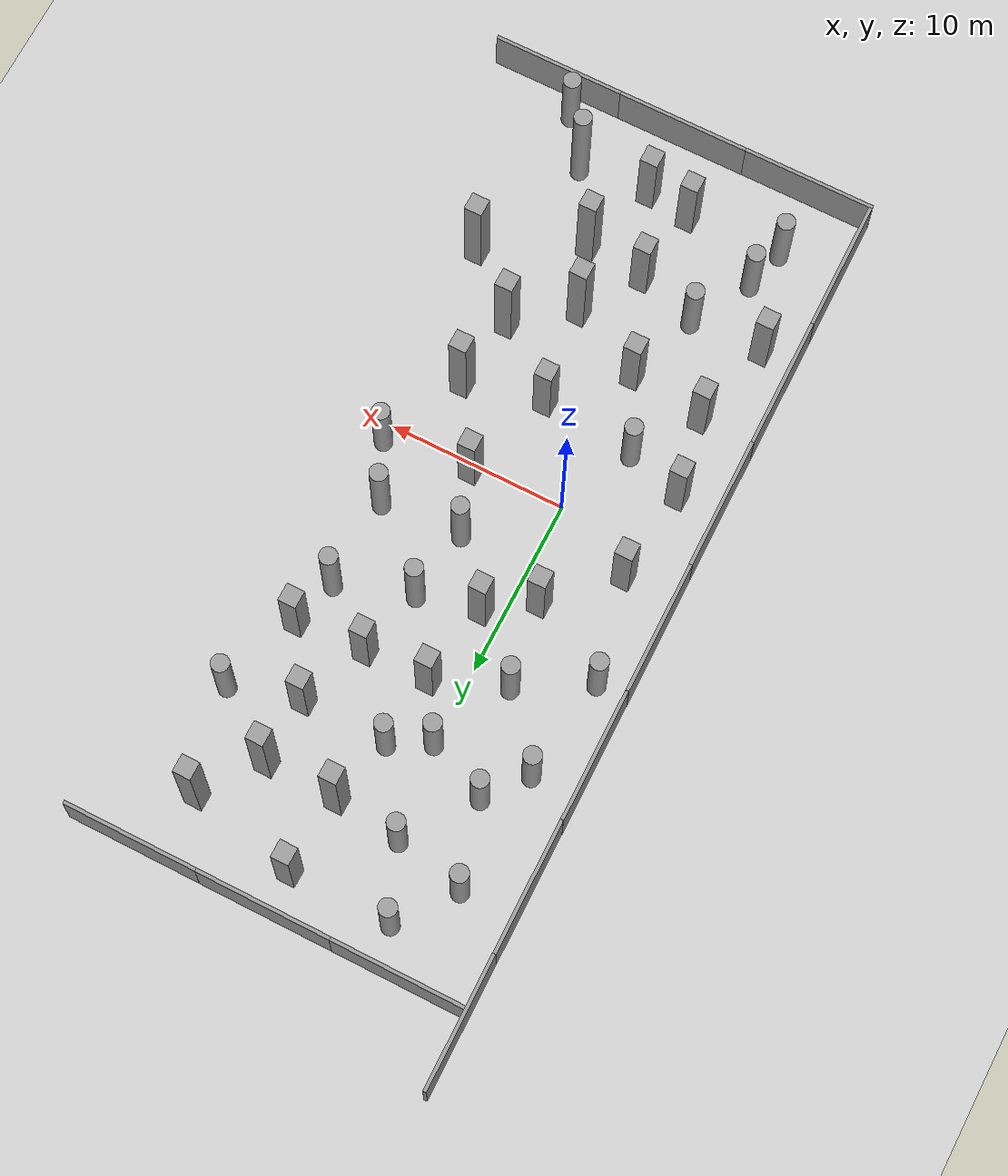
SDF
<sdf version="1.7">
 <world name="default">
  <model name="ground_plane">
   <static>1</static>
   <link name="link">
    <collision name="collision">
     <geometry><plane><normal>0 0 1</normal><size>400 400</size></plane></geometry>
     <surface><friction><ode><mu>100</mu><mu2>50</mu2></ode></friction></surface>
    </collision>
    <visual name="visual">
     <cast_shadows>0</cast_shadows>
     <geometry><plane><normal>0 0 1</normal><size>100 100</size></plane></geometry>
     <material>
      <script><uri>file://media/materials/scripts/gazebo.material</uri><name>Gazebo/Grey</name></script>
     </material>
    </visual>
   </link>
  </model>
  <model name="unit_box_0">
   <pose>1.08465 7.15435 2.66138 2e-06 -0 -0.007188</pose>
   <link name="link">
    <inertial>
     <mass>1</mass>
     <inertia>
      <ixx>0.166667</ixx>
      <ixy>0</ixy>
      <ixz>0</ixz>
      <iyy>0.166667</iyy>
      <iyz>0</iyz>
      <izz>0.166667</izz>
     </inertia>
    </inertial>
    <collision name="collision"><geometry><box><size>1 1 5.32276</size></box></geometry></collision>
    <visual name="visual">
     <geometry><box><size>1 1 5.32276</size></box></geometry>
     <material>
      <script><name>Gazebo/Grey</name><uri>file://media/materials/scripts/gazebo.material</uri></script>
     </material>
    </visual>
   </link>
  </model>
  <model name="unit_cylinder_11">
   <pose>8.59291 9.34423 2.5135 2e-06 0 -0.000619</pose>
   <link name="link">
    <inertial>
     <mass>1</mass>
     <inertia><ixx>0.145833</ixx><ixy>0</ixy><ixz>0</ixz><iyy>0.145833</iyy><iyz>0</iyz><izz>0.125</izz></inertia>
    </inertial>
    <collision name="collision">
     <geometry><cylinder><radius>0.5</radius><length>5.02706</length></cylinder></geometry>
    </collision>
    <visual name="visual">
     <geometry><cylinder><radius>0.5</radius><length>5.02706</length></cylinder></geometry>
     <material>
      <script><name>Gazebo/Grey</name><uri>file://media/materials/scripts/gazebo.material</uri></script>
     </material>
    </visual>
   </link>
  </model>
  <model name="unit_box_1_clone">
   <pose>1.75297 11.7119 2.48504 2e-06 -0 -0.005082</pose>
   <link name="link">
    <inertial>
     <mass>1</mass>
     <inertia>
      <ixx>0.166667</ixx>
      <ixy>0</ixy>
      <ixz>0</ixz>
      <iyy>0.166667</iyy>
      <iyz>0</iyz>
      <izz>0.166667</izz>
     </inertia>
    </inertial>
    <collision name="collision"><geometry><box><size>1 1 4.97009</size></box></geometry></collision>
    <visual name="visual">
     <geometry><box><size>1 1 4.97009</size></box></geometry>
     <material>
      <script><name>Gazebo/Grey</name><uri>file://media/materials/scripts/gazebo.material</uri></script>
     </material>
    </visual>
   </link>
  </model>
  <model name="unit_box_1_clone_0">
   <pose>5.37838 11.8011 2.48504 2e-06 -0 -0.002102</pose>
   <link name="link">
    <inertial>
     <mass>1</mass>
     <inertia>
      <ixx>0.166667</ixx>
      <ixy>0</ixy>
      <ixz>0</ixz>
      <iyy>0.166667</iyy>
      <iyz>0</iyz>
      <izz>0.166667</izz>
     </inertia>
    </inertial>
    <collision name="collision"><geometry><box><size>1 1 4.97009</size></box></geometry></collision>
    <visual name="visual">
     <geometry><box><size>1 1 4.97009</size></box></geometry>
     <material>
      <script><name>Gazebo/Grey</name><uri>file://media/materials/scripts/gazebo.material</uri></script>
     </material>
    </visual>
   </link>
  </model>
  <model name="unit_box_1_clone_1">
   <pose>9.26271 12.0297 2.48504 -0 2e-06 -0.00345</pose>
   <link name="link">
    <inertial>
     <mass>1</mass>
     <inertia>
      <ixx>0.166667</ixx>
      <ixy>0</ixy>
      <ixz>0</ixz>
      <iyy>0.166667</iyy>
      <iyz>0</iyz>
      <izz>0.166667</izz>
     </inertia>
    </inertial>
    <collision name="collision"><geometry><box><size>1 1 4.97009</size></box></geometry></collision>
    <visual name="visual">
     <geometry><box><size>1 1 4.97009</size></box></geometry>
     <material>
      <script><name>Gazebo/Grey</name><uri>file://media/materials/scripts/gazebo.material</uri></script>
     </material>
    </visual>
   </link>
  </model>
  <model name="unit_box_1_clone_9">
   <pose>6.92117 15.5806 2.48504 2e-06 -0 0.001536</pose>
   <link name="link">
    <inertial>
     <mass>1</mass>
     <inertia>
      <ixx>0.166667</ixx>
      <ixy>0</ixy>
      <ixz>0</ixz>
      <iyy>0.166667</iyy>
      <iyz>0</iyz>
      <izz>0.166667</izz>
     </inertia>
    </inertial>
    <collision name="collision"><geometry><box><size>1 1 4.97009</size></box></geometry></collision>
    <visual name="visual">
     <geometry><box><size>1 1 4.97009</size></box></geometry>
     <material>
      <script><name>Gazebo/Grey</name><uri>file://media/materials/scripts/gazebo.material</uri></script>
     </material>
    </visual>
   </link>
  </model>
  <model name="unit_cylinder_27_clone_0">
   <pose>10.8319 16.6345 2.257 2e-06 -0 -0.00071</pose>
   <link name="link">
    <inertial>
     <mass>1</mass>
     <inertia><ixx>0.145833</ixx><ixy>0</ixy><ixz>0</ixz><iyy>0.145833</iyy><iyz>0</iyz><izz>0.125</izz></inertia>
    </inertial>
    <collision name="collision">
     <geometry><cylinder><radius>0.5</radius><length>4.51407</length></cylinder></geometry>
    </collision>
    <visual name="visual">
     <geometry><cylinder><radius>0.5</radius><length>4.51407</length></cylinder></geometry>
     <material>
      <script><name>Gazebo/Grey</name><uri>file://media/materials/scripts/gazebo.material</uri></script>
     </material>
    </visual>
   </link>
  </model>
  <model name="unit_cylinder_27_clone_4">
   <pose>2.15827 15.6508 2.257 2e-06 -0 -0.000742</pose>
   <link name="link">
    <inertial>
     <mass>1</mass>
     <inertia><ixx>0.145833</ixx><ixy>0</ixy><ixz>0</ixz><iyy>0.145833</iyy><iyz>0</iyz><izz>0.125</izz></inertia>
    </inertial>
    <collision name="collision">
     <geometry><cylinder><radius>0.5</radius><length>4.51407</length></cylinder></geometry>
    </collision>
    <visual name="visual">
     <geometry><cylinder><radius>0.5</radius><length>4.51407</length></cylinder></geometry>
     <material>
      <script><name>Gazebo/Grey</name><uri>file://media/materials/scripts/gazebo.material</uri></script>
     </material>
    </visual>
   </link>
  </model>
  <model name="unit_box_8_clone_11">
   <pose>7.04757 19.3025 3.10477 0 1e-06 -0.00742</pose>
   <link name="link">
    <inertial>
     <mass>1</mass>
     <inertia>
      <ixx>0.166667</ixx>
      <ixy>0</ixy>
      <ixz>0</ixz>
      <iyy>0.166667</iyy>
      <iyz>0</iyz>
      <izz>0.166667</izz>
     </inertia>
    </inertial>
    <collision name="collision"><geometry><box><size>1 1 6.20954</size></box></geometry></collision>
    <visual name="visual">
     <geometry><box><size>1 1 6.20954</size></box></geometry>
     <material>
      <script><name>Gazebo/Grey</name><uri>file://media/materials/scripts/gazebo.material</uri></script>
     </material>
    </visual>
   </link>
  </model>
  <model name="unit_box_8_clone_12">
   <pose>2.9683 19.3773 3.10477 1e-06 0 -0.009439</pose>
   <link name="link">
    <inertial>
     <mass>1</mass>
     <inertia>
      <ixx>0.166667</ixx>
      <ixy>0</ixy>
      <ixz>0</ixz>
      <iyy>0.166667</iyy>
      <iyz>0</iyz>
      <izz>0.166667</izz>
     </inertia>
    </inertial>
    <collision name="collision"><geometry><box><size>1 1 6.20954</size></box></geometry></collision>
    <visual name="visual">
     <geometry><box><size>1 1 6.20954</size></box></geometry>
     <material>
      <script><name>Gazebo/Grey</name><uri>file://media/materials/scripts/gazebo.material</uri></script>
     </material>
    </visual>
   </link>
  </model>
  <model name="unit_box_8_clone_13">
   <pose>9.37041 22.3926 3.10477 -1e-06 -0 -0.009041</pose>
   <link name="link">
    <inertial>
     <mass>1</mass>
     <inertia>
      <ixx>0.166667</ixx>
      <ixy>0</ixy>
      <ixz>0</ixz>
      <iyy>0.166667</iyy>
      <iyz>0</iyz>
      <izz>0.166667</izz>
     </inertia>
    </inertial>
    <collision name="collision"><geometry><box><size>1 1 6.20954</size></box></geometry></collision>
    <visual name="visual">
     <geometry><box><size>1 1 6.20954</size></box></geometry>
     <material>
      <script><name>Gazebo/Grey</name><uri>file://media/materials/scripts/gazebo.material</uri></script>
     </material>
    </visual>
   </link>
  </model>
  <model name="unit_box_8_clone_14">
   <pose>5.41114 -13.8377 3.10477 -2e-06 5e-06 -0.007905</pose>
   <link name="link">
    <inertial>
     <mass>1</mass>
     <inertia>
      <ixx>0.166667</ixx>
      <ixy>0</ixy>
      <ixz>0</ixz>
      <iyy>0.166667</iyy>
      <iyz>0</iyz>
      <izz>0.166667</izz>
     </inertia>
    </inertial>
    <collision name="collision"><geometry><box><size>1 1 6.20954</size></box></geometry></collision>
    <visual name="visual">
     <geometry><box><size>1 1 6.20954</size></box></geometry>
     <material>
      <script><name>Gazebo/Grey</name><uri>file://media/materials/scripts/gazebo.material</uri></script>
     </material>
    </visual>
   </link>
  </model>
  <model name="unit_cylinder_17_clone">
   <pose>7.91046 -17.8277 3.23034 3e-06 -1e-06 0.007131</pose>
   <link name="link">
    <inertial>
     <mass>1</mass>
     <inertia><ixx>0.145833</ixx><ixy>0</ixy><ixz>0</ixz><iyy>0.145833</iyy><iyz>0</iyz><izz>0.125</izz></inertia>
    </inertial>
    <collision name="collision">
     <geometry><cylinder><radius>0.5</radius><length>6.46075</length></cylinder></geometry>
    </collision>
    <visual name="visual">
     <geometry><cylinder><radius>0.5</radius><length>6.46075</length></cylinder></geometry>
     <material>
      <script><name>Gazebo/Grey</name><uri>file://media/materials/scripts/gazebo.material</uri></script>
     </material>
    </visual>
   </link>
  </model>
  <model name="unit_box_1_clone_3_clone_2">
   <pose>3.3198 23.7269 2.48504 2e-06 0 -0.004656</pose>
   <link name="link">
    <inertial>
     <mass>1</mass>
     <inertia>
      <ixx>0.166667</ixx>
      <ixy>0</ixy>
      <ixz>0</ixz>
      <iyy>0.166667</iyy>
      <iyz>0</iyz>
      <izz>0.166667</izz>
     </inertia>
    </inertial>
    <collision name="collision"><geometry><box><size>1 1 4.97009</size></box></geometry></collision>
    <visual name="visual">
     <geometry><box><size>1 1 4.97009</size></box></geometry>
     <material>
      <script><name>Gazebo/Grey</name><uri>file://media/materials/scripts/gazebo.material</uri></script>
     </material>
    </visual>
   </link>
  </model>
  <model name="unit_box_1_clone_3_clone_3">
   <pose>2.01116 -13.4762 2.48504 -0 -2e-06 0.000723</pose>
   <link name="link">
    <inertial>
     <mass>1</mass>
     <inertia>
      <ixx>0.166667</ixx>
      <ixy>0</ixy>
      <ixz>0</ixz>
      <iyy>0.166667</iyy>
      <iyz>0</iyz>
      <izz>0.166667</izz>
     </inertia>
    </inertial>
    <collision name="collision"><geometry><box><size>1 1 4.97009</size></box></geometry></collision>
    <visual name="visual">
     <geometry><box><size>1 1 4.97009</size></box></geometry>
     <material>
      <script><name>Gazebo/Grey</name><uri>file://media/materials/scripts/gazebo.material</uri></script>
     </material>
    </visual>
   </link>
  </model>
  <model name="unit_box_1_clone_3_clone_4">
   <pose>3.91858 -18.18 2.48504 2e-06 -0 -0.002709</pose>
   <link name="link">
    <inertial>
     <mass>1</mass>
     <inertia>
      <ixx>0.166667</ixx>
      <ixy>0</ixy>
      <ixz>0</ixz>
      <iyy>0.166667</iyy>
      <iyz>0</iyz>
      <izz>0.166667</izz>
     </inertia>
    </inertial>
    <collision name="collision"><geometry><box><size>1 1 4.97009</size></box></geometry></collision>
    <visual name="visual">
     <geometry><box><size>1 1 4.97009</size></box></geometry>
     <material>
      <script><name>Gazebo/Grey</name><uri>file://media/materials/scripts/gazebo.material</uri></script>
     </material>
    </visual>
   </link>
  </model>
  <model name="unit_box_1_clone_3_clone_5">
   <pose>1.37657 -17.8152 2.48504 2e-06 -0 -0.00227</pose>
   <link name="link">
    <inertial>
     <mass>1</mass>
     <inertia>
      <ixx>0.166667</ixx>
      <ixy>0</ixy>
      <ixz>0</ixz>
      <iyy>0.166667</iyy>
      <iyz>0</iyz>
      <izz>0.166667</izz>
     </inertia>
    </inertial>
    <collision name="collision"><geometry><box><size>1 1 4.97009</size></box></geometry></collision>
    <visual name="visual">
     <geometry><box><size>1 1 4.97009</size></box></geometry>
     <material>
      <script><name>Gazebo/Grey</name><uri>file://media/materials/scripts/gazebo.material</uri></script>
     </material>
    </visual>
   </link>
  </model>
  <model name="grey_wall">
   <static>1</static>
   <link name="link">
    <pose>0 0 1.4 0 -0 0</pose>
    <collision name="collision"><geometry><box><size>7.5 0.2 2.8</size></box></geometry></collision>
    <visual name="visual">
     <cast_shadows>0</cast_shadows>
     <geometry><box><size>7.5 0.2 2.8</size></box></geometry>
     <material>
      <script>
       <uri>model://grey_wall/materials/scripts</uri>
       <uri>model://grey_wall/materials/textures</uri>
       <name>vrc/grey_wall</name>
      </script>
     </material>
    </visual>
   </link>
   <pose>3.76067 -21.8516 0 0 -0 0</pose>
  </model>
  <model name="grey_wall_clone">
   <static>1</static>
   <link name="link">
    <pose>0 0 1.4 0 -0 0</pose>
    <collision name="collision"><geometry><box><size>7.5 0.2 2.8</size></box></geometry></collision>
    <visual name="visual">
     <cast_shadows>0</cast_shadows>
     <geometry><box><size>7.5 0.2 2.8</size></box></geometry>
     <material>
      <script>
       <uri>model://grey_wall/materials/scripts</uri>
       <uri>model://grey_wall/materials/textures</uri>
       <name>vrc/grey_wall</name>
      </script>
     </material>
    </visual>
   </link>
   <pose>11.2467 -21.853 0 0 -0 0</pose>
  </model>
  <model name="grey_wall_clone_5">
   <static>1</static>
   <link name="link">
    <pose>0 0 1.4 0 -0 0</pose>
    <collision name="collision"><geometry><box><size>7.5 0.2 2.8</size></box></geometry></collision>
    <visual name="visual">
     <cast_shadows>0</cast_shadows>
     <geometry><box><size>7.5 0.2 2.8</size></box></geometry>
     <material>
      <script>
       <uri>model://grey_wall/materials/scripts</uri>
       <uri>model://grey_wall/materials/textures</uri>
       <name>vrc/grey_wall</name>
      </script>
     </material>
    </visual>
   </link>
   <pose>-3.71528 -21.8555 0 0 -0 0</pose>
  </model>
  <model name="grey_wall_clone_6_clone_4">
   <static>1</static>
   <link name="link">
    <pose>0 0 1.4 0 -0 0</pose>
    <collision name="collision"><geometry><box><size>7.5 0.2 2.8</size></box></geometry></collision>
    <visual name="visual">
     <cast_shadows>0</cast_shadows>
     <geometry><box><size>7.5 0.2 2.8</size></box></geometry>
     <material>
      <script>
       <uri>model://grey_wall/materials/scripts</uri>
       <uri>model://grey_wall/materials/textures</uri>
       <name>vrc/grey_wall</name>
      </script>
     </material>
    </visual>
   </link>
   <pose>-7.41183 -18.0244 0 0 0 -1.56033</pose>
  </model>
  <model name="grey_wall_clone_6_clone_5">
   <static>1</static>
   <link name="link">
    <pose>0 0 1.4 0 -0 0</pose>
    <collision name="collision"><geometry><box><size>7.5 0.2 2.8</size></box></geometry></collision>
    <visual name="visual">
     <cast_shadows>0</cast_shadows>
     <geometry><box><size>7.5 0.2 2.8</size></box></geometry>
     <material>
      <script>
       <uri>model://grey_wall/materials/scripts</uri>
       <uri>model://grey_wall/materials/textures</uri>
       <name>vrc/grey_wall</name>
      </script>
     </material>
    </visual>
   </link>
   <pose>-7.49266 -10.5633 0 0 0 -1.56033</pose>
  </model>
  <model name="grey_wall_clone_6_clone_6">
   <static>1</static>
   <link name="link">
    <pose>0 0 1.4 0 -0 0</pose>
    <collision name="collision"><geometry><box><size>7.5 0.2 2.8</size></box></geometry></collision>
    <visual name="visual">
     <cast_shadows>0</cast_shadows>
     <geometry><box><size>7.5 0.2 2.8</size></box></geometry>
     <material>
      <script>
       <uri>model://grey_wall/materials/scripts</uri>
       <uri>model://grey_wall/materials/textures</uri>
       <name>vrc/grey_wall</name>
      </script>
     </material>
    </visual>
   </link>
   <pose>-7.56139 -3.06918 0 0 0 -1.56033</pose>
  </model>
  <model name="grey_wall_clone_6_clone_7">
   <static>1</static>
   <link name="link">
    <pose>0 0 1.4 0 -0 0</pose>
    <collision name="collision"><geometry><box><size>7.5 0.2 2.8</size></box></geometry></collision>
    <visual name="visual">
     <cast_shadows>0</cast_shadows>
     <geometry><box><size>7.5 0.2 2.8</size></box></geometry>
     <material>
      <script>
       <uri>model://grey_wall/materials/scripts</uri>
       <uri>model://grey_wall/materials/textures</uri>
       <name>vrc/grey_wall</name>
      </script>
     </material>
    </visual>
   </link>
   <pose>-7.65133 4.42407 0 0 0 -1.56033</pose>
  </model>
  <model name="grey_wall_clone_6_clone_8">
   <static>1</static>
   <link name="link">
    <pose>0 0 1.4 0 -0 0</pose>
    <collision name="collision"><geometry><box><size>7.5 0.2 2.8</size></box></geometry></collision>
    <visual name="visual">
     <cast_shadows>0</cast_shadows>
     <geometry><box><size>7.5 0.2 2.8</size></box></geometry>
     <material>
      <script>
       <uri>model://grey_wall/materials/scripts</uri>
       <uri>model://grey_wall/materials/textures</uri>
       <name>vrc/grey_wall</name>
      </script>
     </material>
    </visual>
   </link>
   <pose>-7.72782 11.9321 0 0 0 -1.56033</pose>
  </model>
  <model name="grey_wall_clone_6_clone_9">
   <static>1</static>
   <link name="link">
    <pose>0 0 1.4 0 -0 0</pose>
    <collision name="collision"><geometry><box><size>7.5 0.2 2.8</size></box></geometry></collision>
    <visual name="visual">
     <cast_shadows>0</cast_shadows>
     <geometry><box><size>7.5 0.2 2.8</size></box></geometry>
     <material>
      <script>
       <uri>model://grey_wall/materials/scripts</uri>
       <uri>model://grey_wall/materials/textures</uri>
       <name>vrc/grey_wall</name>
      </script>
     </material>
    </visual>
   </link>
   <pose>-7.7962 19.3438 0 0 0 -1.56033</pose>
  </model>
  <model name="grey_wall_clone_6_clone_10">
   <static>1</static>
   <link name="link">
    <pose>0 0 1.4 0 -0 0</pose>
    <collision name="collision"><geometry><box><size>7.5 0.2 2.8</size></box></geometry></collision>
    <visual name="visual">
     <cast_shadows>0</cast_shadows>
     <geometry><box><size>7.5 0.2 2.8</size></box></geometry>
     <material>
      <script>
       <uri>model://grey_wall/materials/scripts</uri>
       <uri>model://grey_wall/materials/textures</uri>
       <name>vrc/grey_wall</name>
      </script>
     </material>
    </visual>
   </link>
   <pose>-7.86503 26.8425 0 0 0 -1.56033</pose>
  </model>
  <model name="grey_wall_clone_5_clone">
   <static>1</static>
   <link name="link">
    <pose>0 0 1.4 0 -0 0</pose>
    <collision name="collision"><geometry><box><size>7.5 0.2 2.8</size></box></geometry></collision>
    <visual name="visual">
     <cast_shadows>0</cast_shadows>
     <geometry><box><size>7.5 0.2 2.8</size></box></geometry>
     <material>
      <script>
       <uri>model://grey_wall/materials/scripts</uri>
       <uri>model://grey_wall/materials/textures</uri>
       <name>vrc/grey_wall</name>
      </script>
     </material>
    </visual>
   </link>
   <pose>-4.09194 26.0974 0 0 -0 0</pose>
  </model>
  <model name="grey_wall_clone_5_clone_0">
   <static>1</static>
   <link name="link">
    <pose>0 0 1.4 0 -0 0</pose>
    <collision name="collision"><geometry><box><size>7.5 0.2 2.8</size></box></geometry></collision>
    <visual name="visual">
     <cast_shadows>0</cast_shadows>
     <geometry><box><size>7.5 0.2 2.8</size></box></geometry>
     <material>
      <script>
       <uri>model://grey_wall/materials/scripts</uri>
       <uri>model://grey_wall/materials/textures</uri>
       <name>vrc/grey_wall</name>
      </script>
     </material>
    </visual>
   </link>
   <pose>3.39929 26.0957 0 0 -0 0</pose>
  </model>
  <model name="grey_wall_clone_5_clone_1">
   <static>1</static>
   <link name="link">
    <pose>0 0 1.4 0 -0 0</pose>
    <collision name="collision"><geometry><box><size>7.5 0.2 2.8</size></box></geometry></collision>
    <visual name="visual">
     <cast_shadows>0</cast_shadows>
     <geometry><box><size>7.5 0.2 2.8</size></box></geometry>
     <material>
      <script>
       <uri>model://grey_wall/materials/scripts</uri>
       <uri>model://grey_wall/materials/textures</uri>
       <name>vrc/grey_wall</name>
      </script>
     </material>
    </visual>
   </link>
   <pose>10.8916 26.0904 0 0 -0 0</pose>
  </model>
  <model name="unit_cylinder_27_clone_7_clone_13">
   <pose>9.81097 -20.5013 2.257 2e-06 0 -0.000747</pose>
   <link name="link">
    <inertial>
     <mass>1</mass>
     <inertia><ixx>0.145833</ixx><ixy>0</ixy><ixz>0</ixz><iyy>0.145833</iyy><iyz>0</iyz><izz>0.125</izz></inertia>
    </inertial>
    <collision name="collision">
     <geometry><cylinder><radius>0.5</radius><length>4.51407</length></cylinder></geometry>
    </collision>
    <visual name="visual">
     <geometry><cylinder><radius>0.5</radius><length>4.51407</length></cylinder></geometry>
     <material>
      <script><name>Gazebo/Grey</name><uri>file://media/materials/scripts/gazebo.material</uri></script>
     </material>
    </visual>
   </link>
  </model>
  <model name="unit_cylinder_27_clone_7_clone_14">
   <pose>-3.93566 -18.1699 2.257 2e-06 0 -0.000739</pose>
   <link name="link">
    <inertial>
     <mass>1</mass>
     <inertia><ixx>0.145833</ixx><ixy>0</ixy><ixz>0</ixz><iyy>0.145833</iyy><iyz>0</iyz><izz>0.125</izz></inertia>
    </inertial>
    <collision name="collision">
     <geometry><cylinder><radius>0.5</radius><length>4.51407</length></cylinder></geometry>
    </collision>
    <visual name="visual">
     <geometry><cylinder><radius>0.5</radius><length>4.51407</length></cylinder></geometry>
     <material>
      <script><name>Gazebo/Grey</name><uri>file://media/materials/scripts/gazebo.material</uri></script>
     </material>
    </visual>
   </link>
  </model>
  <model name="unit_cylinder_27_clone_7_clone_15">
   <pose>-3.31263 -15.8221 2.257 2e-06 -0 -0.000733</pose>
   <link name="link">
    <inertial>
     <mass>1</mass>
     <inertia><ixx>0.145833</ixx><ixy>0</ixy><ixz>0</ixz><iyy>0.145833</iyy><iyz>0</iyz><izz>0.125</izz></inertia>
    </inertial>
    <collision name="collision">
     <geometry><cylinder><radius>0.5</radius><length>4.51407</length></cylinder></geometry>
    </collision>
    <visual name="visual">
     <geometry><cylinder><radius>0.5</radius><length>4.51407</length></cylinder></geometry>
     <material>
      <script><name>Gazebo/Grey</name><uri>file://media/materials/scripts/gazebo.material</uri></script>
     </material>
    </visual>
   </link>
  </model>
  <model name="unit_cylinder_27_clone_7_clone_16">
   <pose>-1.41691 -12.4127 2.257 2e-06 0 -0.000735</pose>
   <link name="link">
    <inertial>
     <mass>1</mass>
     <inertia><ixx>0.145833</ixx><ixy>0</ixy><ixz>0</ixz><iyy>0.145833</iyy><iyz>0</iyz><izz>0.125</izz></inertia>
    </inertial>
    <collision name="collision">
     <geometry><cylinder><radius>0.5</radius><length>4.51407</length></cylinder></geometry>
    </collision>
    <visual name="visual">
     <geometry><cylinder><radius>0.5</radius><length>4.51407</length></cylinder></geometry>
     <material>
      <script><name>Gazebo/Grey</name><uri>file://media/materials/scripts/gazebo.material</uri></script>
     </material>
    </visual>
   </link>
  </model>
  <model name="unit_box_1_clone_3_clone_5_clone">
   <pose>-5.52117 -12.5434 2.48504 2e-06 0 -0.002588</pose>
   <link name="link">
    <inertial>
     <mass>1</mass>
     <inertia>
      <ixx>0.166667</ixx>
      <ixy>0</ixy>
      <ixz>0</ixz>
      <iyy>0.166667</iyy>
      <iyz>0</iyz>
      <izz>0.166667</izz>
     </inertia>
    </inertial>
    <collision name="collision"><geometry><box><size>1 1 4.97009</size></box></geometry></collision>
    <visual name="visual">
     <geometry><box><size>1 1 4.97009</size></box></geometry>
     <material>
      <script><name>Gazebo/Grey</name><uri>file://media/materials/scripts/gazebo.material</uri></script>
     </material>
    </visual>
   </link>
  </model>
  <model name="unit_box_1_clone_3_clone_5_clone_0">
   <pose>-0.038395 -8.17117 2.48504 2e-06 0 -0.001851</pose>
   <link name="link">
    <inertial>
     <mass>1</mass>
     <inertia>
      <ixx>0.166667</ixx>
      <ixy>0</ixy>
      <ixz>0</ixz>
      <iyy>0.166667</iyy>
      <iyz>0</iyz>
      <izz>0.166667</izz>
     </inertia>
    </inertial>
    <collision name="collision"><geometry><box><size>1 1 4.97009</size></box></geometry></collision>
    <visual name="visual">
     <geometry><box><size>1 1 4.97009</size></box></geometry>
     <material>
      <script><name>Gazebo/Grey</name><uri>file://media/materials/scripts/gazebo.material</uri></script>
     </material>
    </visual>
   </link>
  </model>
  <model name="unit_box_1_clone_3_clone_5_clone_1">
   <pose>-4.29996 -7.57276 2.48504 -0 2e-06 -1.9e-05</pose>
   <link name="link">
    <inertial>
     <mass>1</mass>
     <inertia>
      <ixx>0.166667</ixx>
      <ixy>0</ixy>
      <ixz>0</ixz>
      <iyy>0.166667</iyy>
      <iyz>0</iyz>
      <izz>0.166667</izz>
     </inertia>
    </inertial>
    <collision name="collision"><geometry><box><size>1 1 4.97009</size></box></geometry></collision>
    <visual name="visual">
     <geometry><box><size>1 1 4.97009</size></box></geometry>
     <material>
      <script><name>Gazebo/Grey</name><uri>file://media/materials/scripts/gazebo.material</uri></script>
     </material>
    </visual>
   </link>
  </model>
  <model name="unit_box_1_clone_3_clone_5_clone_2">
   <pose>-5.14045 -3.1363 2.48504 -2e-06 -0 -0.002575</pose>
   <link name="link">
    <inertial>
     <mass>1</mass>
     <inertia>
      <ixx>0.166667</ixx>
      <ixy>0</ixy>
      <ixz>0</ixz>
      <iyy>0.166667</iyy>
      <iyz>0</iyz>
      <izz>0.166667</izz>
     </inertia>
    </inertial>
    <collision name="collision"><geometry><box><size>1 1 4.97009</size></box></geometry></collision>
    <visual name="visual">
     <geometry><box><size>1 1 4.97009</size></box></geometry>
     <material>
      <script><name>Gazebo/Grey</name><uri>file://media/materials/scripts/gazebo.material</uri></script>
     </material>
    </visual>
   </link>
  </model>
  <model name="unit_box_1_clone_3_clone_5_clone_3">
   <pose>-4.60439 2.10362 2.48504 0 2e-06 -0.002103</pose>
   <link name="link">
    <inertial>
     <mass>1</mass>
     <inertia>
      <ixx>0.166667</ixx>
      <ixy>0</ixy>
      <ixz>0</ixz>
      <iyy>0.166667</iyy>
      <iyz>0</iyz>
      <izz>0.166667</izz>
     </inertia>
    </inertial>
    <collision name="collision"><geometry><box><size>1 1 4.97009</size></box></geometry></collision>
    <visual name="visual">
     <geometry><box><size>1 1 4.97009</size></box></geometry>
     <material>
      <script><name>Gazebo/Grey</name><uri>file://media/materials/scripts/gazebo.material</uri></script>
     </material>
    </visual>
   </link>
  </model>
  <model name="unit_box_1_clone_3_clone_5_clone_4">
   <pose>-1.37975 5.40556 2.48504 2e-06 -0 -0.002479</pose>
   <link name="link">
    <inertial>
     <mass>1</mass>
     <inertia>
      <ixx>0.166667</ixx>
      <ixy>0</ixy>
      <ixz>0</ixz>
      <iyy>0.166667</iyy>
      <iyz>0</iyz>
      <izz>0.166667</izz>
     </inertia>
    </inertial>
    <collision name="collision"><geometry><box><size>1 1 4.97009</size></box></geometry></collision>
    <visual name="visual">
     <geometry><box><size>1 1 4.97009</size></box></geometry>
     <material>
      <script><name>Gazebo/Grey</name><uri>file://media/materials/scripts/gazebo.material</uri></script>
     </material>
    </visual>
   </link>
  </model>
  <model name="unit_cylinder_27_clone_4_clone">
   <pose>-2.10517 10.1211 2.257 2e-06 0 -0.000764</pose>
   <link name="link">
    <inertial>
     <mass>1</mass>
     <inertia><ixx>0.145833</ixx><ixy>0</ixy><ixz>0</ixz><iyy>0.145833</iyy><iyz>0</iyz><izz>0.125</izz></inertia>
    </inertial>
    <collision name="collision">
     <geometry><cylinder><radius>0.5</radius><length>4.51407</length></cylinder></geometry>
    </collision>
    <visual name="visual">
     <geometry><cylinder><radius>0.5</radius><length>4.51407</length></cylinder></geometry>
     <material>
      <script><name>Gazebo/Grey</name><uri>file://media/materials/scripts/gazebo.material</uri></script>
     </material>
    </visual>
   </link>
  </model>
  <model name="unit_cylinder_27_clone_4_clone_0">
   <pose>-5.94336 7.92064 2.257 2e-06 0 -0.000766</pose>
   <link name="link">
    <inertial>
     <mass>1</mass>
     <inertia><ixx>0.145833</ixx><ixy>0</ixy><ixz>0</ixz><iyy>0.145833</iyy><iyz>0</iyz><izz>0.125</izz></inertia>
    </inertial>
    <collision name="collision">
     <geometry><cylinder><radius>0.5</radius><length>4.51407</length></cylinder></geometry>
    </collision>
    <visual name="visual">
     <geometry><cylinder><radius>0.5</radius><length>4.51407</length></cylinder></geometry>
     <material>
      <script><name>Gazebo/Grey</name><uri>file://media/materials/scripts/gazebo.material</uri></script>
     </material>
    </visual>
   </link>
  </model>
  <model name="unit_cylinder_27_clone_4_clone_1">
   <pose>-5.15469 13.7514 2.257 2e-06 0 -0.000764</pose>
   <link name="link">
    <inertial>
     <mass>1</mass>
     <inertia><ixx>0.145833</ixx><ixy>0</ixy><ixz>0</ixz><iyy>0.145833</iyy><iyz>0</iyz><izz>0.125</izz></inertia>
    </inertial>
    <collision name="collision">
     <geometry><cylinder><radius>0.5</radius><length>4.51407</length></cylinder></geometry>
    </collision>
    <visual name="visual">
     <geometry><cylinder><radius>0.5</radius><length>4.51407</length></cylinder></geometry>
     <material>
      <script><name>Gazebo/Grey</name><uri>file://media/materials/scripts/gazebo.material</uri></script>
     </material>
    </visual>
   </link>
  </model>
  <model name="unit_cylinder_27_clone_4_clone_2">
   <pose>1.6e-05 14.5226 2.257 2e-06 0 -0.000763</pose>
   <link name="link">
    <inertial>
     <mass>1</mass>
     <inertia><ixx>0.145833</ixx><ixy>0</ixy><ixz>0</ixz><iyy>0.145833</iyy><iyz>0</iyz><izz>0.125</izz></inertia>
    </inertial>
    <collision name="collision">
     <geometry><cylinder><radius>0.5</radius><length>4.51407</length></cylinder></geometry>
    </collision>
    <visual name="visual">
     <geometry><cylinder><radius>0.5</radius><length>4.51407</length></cylinder></geometry>
     <material>
      <script><name>Gazebo/Grey</name><uri>file://media/materials/scripts/gazebo.material</uri></script>
     </material>
    </visual>
   </link>
  </model>
  <model name="unit_cylinder_27_clone_4_clone_3">
   <pose>-3.40055 16 2.257 2e-06 -0 -0.000756</pose>
   <link name="link">
    <inertial>
     <mass>1</mass>
     <inertia><ixx>0.145833</ixx><ixy>0</ixy><ixz>0</ixz><iyy>0.145833</iyy><iyz>0</iyz><izz>0.125</izz></inertia>
    </inertial>
    <collision name="collision">
     <geometry><cylinder><radius>0.5</radius><length>4.51407</length></cylinder></geometry>
    </collision>
    <visual name="visual">
     <geometry><cylinder><radius>0.5</radius><length>4.51407</length></cylinder></geometry>
     <material>
      <script><name>Gazebo/Grey</name><uri>file://media/materials/scripts/gazebo.material</uri></script>
     </material>
    </visual>
   </link>
  </model>
  <model name="unit_cylinder_27_clone_4_clone_4">
   <pose>-0.736811 19.8028 2.257 2e-06 0 -0.000751</pose>
   <link name="link">
    <inertial>
     <mass>1</mass>
     <inertia><ixx>0.145833</ixx><ixy>0</ixy><ixz>0</ixz><iyy>0.145833</iyy><iyz>0</iyz><izz>0.125</izz></inertia>
    </inertial>
    <collision name="collision">
     <geometry><cylinder><radius>0.5</radius><length>4.51407</length></cylinder></geometry>
    </collision>
    <visual name="visual">
     <geometry><cylinder><radius>0.5</radius><length>4.51407</length></cylinder></geometry>
     <material>
      <script><name>Gazebo/Grey</name><uri>file://media/materials/scripts/gazebo.material</uri></script>
     </material>
    </visual>
   </link>
  </model>
  <model name="unit_cylinder_27_clone_4_clone_5">
   <pose>-4.677 20.6673 2.257 2e-06 0 -0.000749</pose>
   <link name="link">
    <inertial>
     <mass>1</mass>
     <inertia><ixx>0.145833</ixx><ixy>0</ixy><ixz>0</ixz><iyy>0.145833</iyy><iyz>0</iyz><izz>0.125</izz></inertia>
    </inertial>
    <collision name="collision">
     <geometry><cylinder><radius>0.5</radius><length>4.51407</length></cylinder></geometry>
    </collision>
    <visual name="visual">
     <geometry><cylinder><radius>0.5</radius><length>4.51407</length></cylinder></geometry>
     <material>
      <script><name>Gazebo/Grey</name><uri>file://media/materials/scripts/gazebo.material</uri></script>
     </material>
    </visual>
   </link>
  </model>
  <model name="unit_cylinder_27_clone_4_clone_6">
   <pose>-2.36253 23.751 2.257 2e-06 0 -0.00075</pose>
   <link name="link">
    <inertial>
     <mass>1</mass>
     <inertia><ixx>0.145833</ixx><ixy>0</ixy><ixz>0</ixz><iyy>0.145833</iyy><iyz>0</iyz><izz>0.125</izz></inertia>
    </inertial>
    <collision name="collision">
     <geometry><cylinder><radius>0.5</radius><length>4.51407</length></cylinder></geometry>
    </collision>
    <visual name="visual">
     <geometry><cylinder><radius>0.5</radius><length>4.51407</length></cylinder></geometry>
     <material>
      <script><name>Gazebo/Grey</name><uri>file://media/materials/scripts/gazebo.material</uri></script>
     </material>
    </visual>
   </link>
  </model>
  <model name="unit_cylinder_11_clone">
   <pose>4.4864 7.92727 2.51349 2e-06 -0 -0.000587</pose>
   <link name="link">
    <inertial>
     <mass>1</mass>
     <inertia><ixx>0.145833</ixx><ixy>0</ixy><ixz>0</ixz><iyy>0.145833</iyy><iyz>0</iyz><izz>0.125</izz></inertia>
    </inertial>
    <collision name="collision">
     <geometry><cylinder><radius>0.5</radius><length>5.02706</length></cylinder></geometry>
    </collision>
    <visual name="visual">
     <geometry><cylinder><radius>0.5</radius><length>5.02706</length></cylinder></geometry>
     <material>
      <script><name>Gazebo/Grey</name><uri>file://media/materials/scripts/gazebo.material</uri></script>
     </material>
    </visual>
   </link>
  </model>
  <model name="unit_cylinder_11_clone_0">
   <pose>3.9403 3.91165 2.51349 2e-06 0 -0.000588</pose>
   <link name="link">
    <inertial>
     <mass>1</mass>
     <inertia><ixx>0.145833</ixx><ixy>0</ixy><ixz>0</ixz><iyy>0.145833</iyy><iyz>0</iyz><izz>0.125</izz></inertia>
    </inertial>
    <collision name="collision">
     <geometry><cylinder><radius>0.5</radius><length>5.02706</length></cylinder></geometry>
    </collision>
    <visual name="visual">
     <geometry><cylinder><radius>0.5</radius><length>5.02706</length></cylinder></geometry>
     <material>
      <script><name>Gazebo/Grey</name><uri>file://media/materials/scripts/gazebo.material</uri></script>
     </material>
    </visual>
   </link>
  </model>
  <model name="unit_cylinder_11_clone_1">
   <pose>8.44494 4.2333 2.51349 2e-06 0 -0.000585</pose>
   <link name="link">
    <inertial>
     <mass>1</mass>
     <inertia><ixx>0.145833</ixx><ixy>0</ixy><ixz>0</ixz><iyy>0.145833</iyy><iyz>0</iyz><izz>0.125</izz></inertia>
    </inertial>
    <collision name="collision">
     <geometry><cylinder><radius>0.5</radius><length>5.02706</length></cylinder></geometry>
    </collision>
    <visual name="visual">
     <geometry><cylinder><radius>0.5</radius><length>5.02706</length></cylinder></geometry>
     <material>
      <script><name>Gazebo/Grey</name><uri>file://media/materials/scripts/gazebo.material</uri></script>
     </material>
    </visual>
   </link>
  </model>
  <model name="unit_cylinder_27_clone_4_clone_2_clone">
   <pose>10.0223 1.03987 2.257 2e-06 0 -0.00077</pose>
   <link name="link">
    <inertial>
     <mass>1</mass>
     <inertia><ixx>0.145833</ixx><ixy>0</ixy><ixz>0</ixz><iyy>0.145833</iyy><iyz>0</iyz><izz>0.125</izz></inertia>
    </inertial>
    <collision name="collision">
     <geometry><cylinder><radius>0.5</radius><length>4.51407</length></cylinder></geometry>
    </collision>
    <visual name="visual">
     <geometry><cylinder><radius>0.5</radius><length>4.51407</length></cylinder></geometry>
     <material>
      <script><name>Gazebo/Grey</name><uri>file://media/materials/scripts/gazebo.material</uri></script>
     </material>
    </visual>
   </link>
  </model>
  <model name="unit_box_8_clone_15_clone_1">
   <pose>10.6135 -10.9098 3.10477 2e-06 -5e-06 -0.00763</pose>
   <link name="link">
    <inertial>
     <mass>1</mass>
     <inertia>
      <ixx>0.166667</ixx>
      <ixy>0</ixy>
      <ixz>0</ixz>
      <iyy>0.166667</iyy>
      <iyz>0</iyz>
      <izz>0.166667</izz>
     </inertia>
    </inertial>
    <collision name="collision"><geometry><box><size>1 1 6.20954</size></box></geometry></collision>
    <visual name="visual">
     <geometry><box><size>1 1 6.20954</size></box></geometry>
     <material>
      <script><name>Gazebo/Grey</name><uri>file://media/materials/scripts/gazebo.material</uri></script>
     </material>
    </visual>
   </link>
  </model>
  <model name="unit_box_8_clone_15_clone_2">
   <pose>7.77899 -3.68012 3.10477 0 -5e-06 -0.008522</pose>
   <link name="link">
    <inertial>
     <mass>1</mass>
     <inertia>
      <ixx>0.166667</ixx>
      <ixy>0</ixy>
      <ixz>0</ixz>
      <iyy>0.166667</iyy>
      <iyz>0</iyz>
      <izz>0.166667</izz>
     </inertia>
    </inertial>
    <collision name="collision"><geometry><box><size>1 1 6.20954</size></box></geometry></collision>
    <visual name="visual">
     <geometry><box><size>1 1 6.20954</size></box></geometry>
     <material>
      <script><name>Gazebo/Grey</name><uri>file://media/materials/scripts/gazebo.material</uri></script>
     </material>
    </visual>
   </link>
  </model>
  <model name="unit_box_8_clone_15_clone_3">
   <pose>7.23906 -7.79049 3.10477 0 -1e-06 -0.009687</pose>
   <link name="link">
    <inertial>
     <mass>1</mass>
     <inertia>
      <ixx>0.166667</ixx>
      <ixy>0</ixy>
      <ixz>0</ixz>
      <iyy>0.166667</iyy>
      <iyz>0</iyz>
      <izz>0.166667</izz>
     </inertia>
    </inertial>
    <collision name="collision"><geometry><box><size>1 1 6.20954</size></box></geometry></collision>
    <visual name="visual">
     <geometry><box><size>1 1 6.20954</size></box></geometry>
     <material>
      <script><name>Gazebo/Grey</name><uri>file://media/materials/scripts/gazebo.material</uri></script>
     </material>
    </visual>
   </link>
  </model>
  <model name="unit_box_8_clone_15_clone_4">
   <pose>4.12481 -10.1698 3.10477 0 -1e-06 -0.009343</pose>
   <link name="link">
    <inertial>
     <mass>1</mass>
     <inertia>
      <ixx>0.166667</ixx>
      <ixy>0</ixy>
      <ixz>0</ixz>
      <iyy>0.166667</iyy>
      <iyz>0</iyz>
      <izz>0.166667</izz>
     </inertia>
    </inertial>
    <collision name="collision"><geometry><box><size>1 1 6.20954</size></box></geometry></collision>
    <visual name="visual">
     <geometry><box><size>1 1 6.20954</size></box></geometry>
     <material>
      <script><name>Gazebo/Grey</name><uri>file://media/materials/scripts/gazebo.material</uri></script>
     </material>
    </visual>
   </link>
  </model>
  <model name="unit_box_1_clone_3_clone_3_clone">
   <pose>3.39046 -4.73289 2.48504 2e-06 -0 0.001484</pose>
   <link name="link">
    <inertial>
     <mass>1</mass>
     <inertia>
      <ixx>0.166667</ixx>
      <ixy>0</ixy>
      <ixz>0</ixz>
      <iyy>0.166667</iyy>
      <iyz>0</iyz>
      <izz>0.166667</izz>
     </inertia>
    </inertial>
    <collision name="collision"><geometry><box><size>1 1 4.97009</size></box></geometry></collision>
    <visual name="visual">
     <geometry><box><size>1 1 4.97009</size></box></geometry>
     <material>
      <script><name>Gazebo/Grey</name><uri>file://media/materials/scripts/gazebo.material</uri></script>
     </material>
    </visual>
   </link>
  </model>
  <model name="unit_box_1_clone_3_clone_3_clone_0">
   <pose>5.1283 0.494141 2.48504 2e-06 -0 0.001563</pose>
   <link name="link">
    <inertial>
     <mass>1</mass>
     <inertia>
      <ixx>0.166667</ixx>
      <ixy>0</ixy>
      <ixz>0</ixz>
      <iyy>0.166667</iyy>
      <iyz>0</iyz>
      <izz>0.166667</izz>
     </inertia>
    </inertial>
    <collision name="collision"><geometry><box><size>1 1 4.97009</size></box></geometry></collision>
    <visual name="visual">
     <geometry><box><size>1 1 4.97009</size></box></geometry>
     <material>
      <script><name>Gazebo/Grey</name><uri>file://media/materials/scripts/gazebo.material</uri></script>
     </material>
    </visual>
   </link>
  </model>
  <model name="unit_cylinder_27_clone_4_clone_0_clone">
   <pose>-1.93023 -4.13178 2.257 2e-06 -0 -0.000772</pose>
   <link name="link">
    <inertial>
     <mass>1</mass>
     <inertia><ixx>0.145833</ixx><ixy>0</ixy><ixz>0</ixz><iyy>0.145833</iyy><iyz>0</iyz><izz>0.125</izz></inertia>
    </inertial>
    <collision name="collision">
     <geometry><cylinder><radius>0.5</radius><length>4.51407</length></cylinder></geometry>
    </collision>
    <visual name="visual">
     <geometry><cylinder><radius>0.5</radius><length>4.51407</length></cylinder></geometry>
     <material>
      <script><name>Gazebo/Grey</name><uri>file://media/materials/scripts/gazebo.material</uri></script>
     </material>
    </visual>
   </link>
  </model>
 </world>
</sdf>
